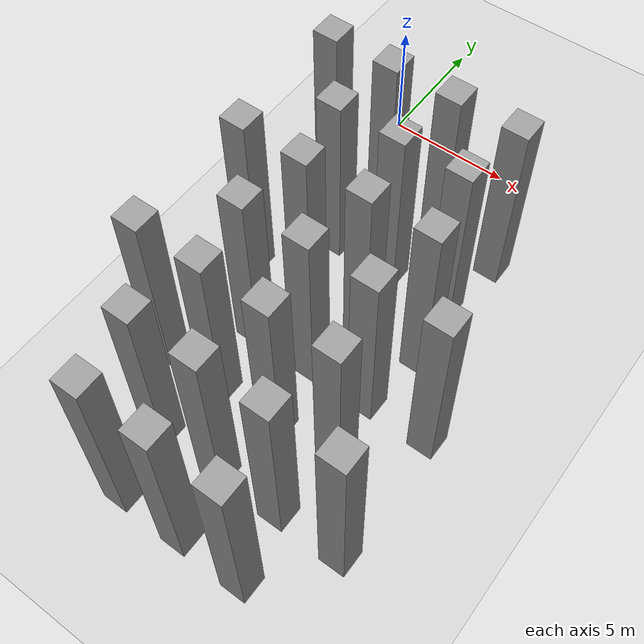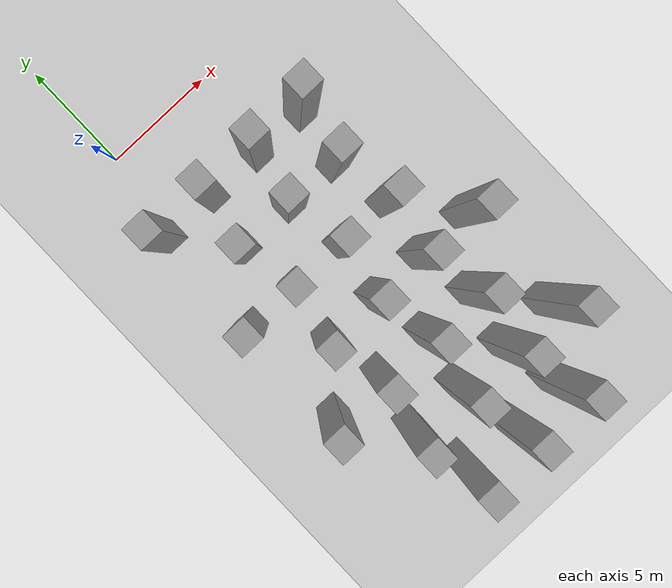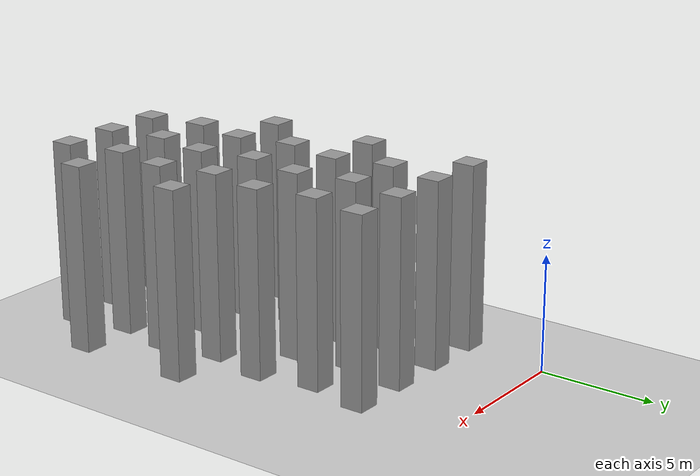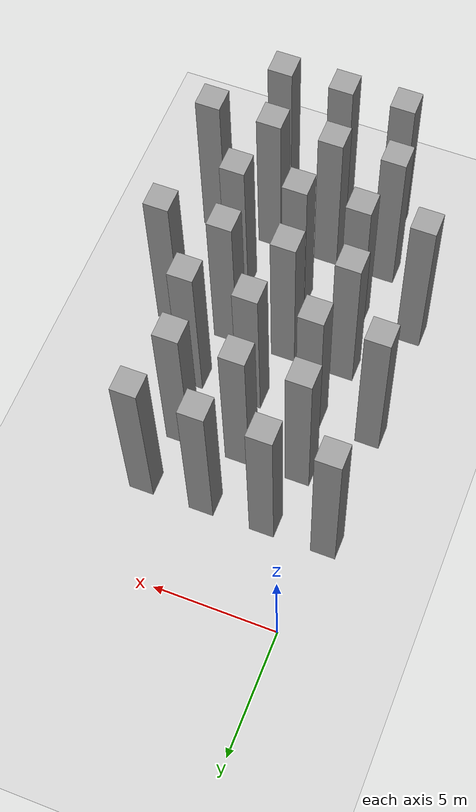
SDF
<sdf version="1.7">
 <world name="default">
  <model name="ground_plane">
   <static>1</static>
   <link name="link">
    <collision name="collision">
     <geometry><plane><normal>0 0 1</normal><size>100 100</size></plane></geometry>
     <surface>
      <contact><collide_bitmask>65535</collide_bitmask></contact>
      <friction><ode><mu>100</mu><mu2>50</mu2></ode></friction>
     </surface>
    </collision>
    <visual name="visual">
     <cast_shadows>0</cast_shadows>
     <geometry><plane><normal>0 0 1</normal><size>100 100</size></plane></geometry>
     <material>
      <script><uri>file://media/materials/scripts/gazebo.material</uri><name>Gazebo/Grey</name></script>
     </material>
    </visual>
   </link>
  </model>
  <model name="unit_box_static9">
   <link name="link">
    <inertial>
     <mass>1</mass>
     <inertia>
      <ixx>0.166667</ixx>
      <ixy>0</ixy>
      <ixz>0</ixz>
      <iyy>0.166667</iyy>
      <iyz>0</iyz>
      <izz>0.166667</izz>
     </inertia>
    </inertial>
    <visual name="visual">
     <geometry><box><size>1 1 8</size></box></geometry>
     <material>
      <script><name>Gazebo/Grey</name><uri>file://media/materials/scripts/gazebo.material</uri></script>
      <shader type="pixel"/>
     </material>
    </visual>
    <collision name="collision">
     <geometry><box><size>1 1 8</size></box></geometry>
     <surface>
      <friction>
       <ode><mu>1</mu><mu2>1</mu2><fdir1>0 0 0</fdir1><slip1>0</slip1><slip2>0</slip2></ode>
       <torsional>
        <coefficient>1</coefficient>
        <patch_radius>0</patch_radius>
        <surface_radius>0</surface_radius>
        <use_patch_radius>1</use_patch_radius>
        <ode><slip>0</slip></ode>
       </torsional>
      </friction>
      <bounce><restitution_coefficient>0</restitution_coefficient><threshold>1e+06</threshold></bounce>
      <contact>
       <collide_without_contact>0</collide_without_contact>
       <collide_without_contact_bitmask>1</collide_without_contact_bitmask>
       <collide_bitmask>1</collide_bitmask>
       <ode>
        <soft_cfm>0</soft_cfm>
        <soft_erp>0.2</soft_erp>
        <kp>1e+13</kp>
        <kd>1</kd>
        <max_vel>0.01</max_vel>
        <min_depth>0</min_depth>
       </ode>
       <bullet>
        <split_impulse>1</split_impulse>
        <split_impulse_penetration_threshold>-0.01</split_impulse_penetration_threshold>
        <soft_cfm>0</soft_cfm>
        <soft_erp>0.2</soft_erp>
        <kp>1e+13</kp>
        <kd>1</kd>
       </bullet>
      </contact>
     </surface>
    </collision>
   </link>
   <static>1</static>
   <pose>2 -19 4 0 -0 0</pose>
  </model>
  <model name="unit_box_static10">
   <link name="link">
    <inertial>
     <mass>1</mass>
     <inertia>
      <ixx>0.166667</ixx>
      <ixy>0</ixy>
      <ixz>0</ixz>
      <iyy>0.166667</iyy>
      <iyz>0</iyz>
      <izz>0.166667</izz>
     </inertia>
    </inertial>
    <visual name="visual">
     <geometry><box><size>1 1 8</size></box></geometry>
     <material>
      <script><name>Gazebo/Grey</name><uri>file://media/materials/scripts/gazebo.material</uri></script>
      <shader type="pixel"/>
     </material>
    </visual>
    <collision name="collision">
     <geometry><box><size>1 1 8</size></box></geometry>
     <surface>
      <friction>
       <ode><mu>1</mu><mu2>1</mu2><fdir1>0 0 0</fdir1><slip1>0</slip1><slip2>0</slip2></ode>
       <torsional>
        <coefficient>1</coefficient>
        <patch_radius>0</patch_radius>
        <surface_radius>0</surface_radius>
        <use_patch_radius>1</use_patch_radius>
        <ode><slip>0</slip></ode>
       </torsional>
      </friction>
      <bounce><restitution_coefficient>0</restitution_coefficient><threshold>1e+06</threshold></bounce>
      <contact>
       <collide_without_contact>0</collide_without_contact>
       <collide_without_contact_bitmask>1</collide_without_contact_bitmask>
       <collide_bitmask>1</collide_bitmask>
       <ode>
        <soft_cfm>0</soft_cfm>
        <soft_erp>0.2</soft_erp>
        <kp>1e+13</kp>
        <kd>1</kd>
        <max_vel>0.01</max_vel>
        <min_depth>0</min_depth>
       </ode>
       <bullet>
        <split_impulse>1</split_impulse>
        <split_impulse_penetration_threshold>-0.01</split_impulse_penetration_threshold>
        <soft_cfm>0</soft_cfm>
        <soft_erp>0.2</soft_erp>
        <kp>1e+13</kp>
        <kd>1</kd>
       </bullet>
      </contact>
     </surface>
    </collision>
   </link>
   <static>1</static>
   <pose>4.5 -19 4 0 -0 0</pose>
  </model>
  <model name="unit_box_static11">
   <link name="link">
    <inertial>
     <mass>1</mass>
     <inertia>
      <ixx>0.166667</ixx>
      <ixy>0</ixy>
      <ixz>0</ixz>
      <iyy>0.166667</iyy>
      <iyz>0</iyz>
      <izz>0.166667</izz>
     </inertia>
    </inertial>
    <visual name="visual">
     <geometry><box><size>1 1 8</size></box></geometry>
     <material>
      <script><name>Gazebo/Grey</name><uri>file://media/materials/scripts/gazebo.material</uri></script>
      <shader type="pixel"/>
     </material>
    </visual>
    <collision name="collision">
     <geometry><box><size>1 1 8</size></box></geometry>
     <surface>
      <friction>
       <ode><mu>1</mu><mu2>1</mu2><fdir1>0 0 0</fdir1><slip1>0</slip1><slip2>0</slip2></ode>
       <torsional>
        <coefficient>1</coefficient>
        <patch_radius>0</patch_radius>
        <surface_radius>0</surface_radius>
        <use_patch_radius>1</use_patch_radius>
        <ode><slip>0</slip></ode>
       </torsional>
      </friction>
      <bounce><restitution_coefficient>0</restitution_coefficient><threshold>1e+06</threshold></bounce>
      <contact>
       <collide_without_contact>0</collide_without_contact>
       <collide_without_contact_bitmask>1</collide_without_contact_bitmask>
       <collide_bitmask>1</collide_bitmask>
       <ode>
        <soft_cfm>0</soft_cfm>
        <soft_erp>0.2</soft_erp>
        <kp>1e+13</kp>
        <kd>1</kd>
        <max_vel>0.01</max_vel>
        <min_depth>0</min_depth>
       </ode>
       <bullet>
        <split_impulse>1</split_impulse>
        <split_impulse_penetration_threshold>-0.01</split_impulse_penetration_threshold>
        <soft_cfm>0</soft_cfm>
        <soft_erp>0.2</soft_erp>
        <kp>1e+13</kp>
        <kd>1</kd>
       </bullet>
      </contact>
     </surface>
    </collision>
   </link>
   <static>1</static>
   <pose>7 -19 4 0 -0 0</pose>
  </model>
  <model name="unit_box_static23">
   <link name="link">
    <inertial>
     <mass>1</mass>
     <inertia>
      <ixx>0.166667</ixx>
      <ixy>0</ixy>
      <ixz>0</ixz>
      <iyy>0.166667</iyy>
      <iyz>0</iyz>
      <izz>0.166667</izz>
     </inertia>
    </inertial>
    <visual name="visual">
     <geometry><box><size>1 1 8</size></box></geometry>
     <material>
      <script><name>Gazebo/Grey</name><uri>file://media/materials/scripts/gazebo.material</uri></script>
      <shader type="pixel"/>
     </material>
    </visual>
    <collision name="collision">
     <geometry><box><size>1 1 8</size></box></geometry>
     <surface>
      <friction>
       <ode><mu>1</mu><mu2>1</mu2><fdir1>0 0 0</fdir1><slip1>0</slip1><slip2>0</slip2></ode>
       <torsional>
        <coefficient>1</coefficient>
        <patch_radius>0</patch_radius>
        <surface_radius>0</surface_radius>
        <use_patch_radius>1</use_patch_radius>
        <ode><slip>0</slip></ode>
       </torsional>
      </friction>
      <bounce><restitution_coefficient>0</restitution_coefficient><threshold>1e+06</threshold></bounce>
      <contact>
       <collide_without_contact>0</collide_without_contact>
       <collide_without_contact_bitmask>1</collide_without_contact_bitmask>
       <collide_bitmask>1</collide_bitmask>
       <ode>
        <soft_cfm>0</soft_cfm>
        <soft_erp>0.2</soft_erp>
        <kp>1e+13</kp>
        <kd>1</kd>
        <max_vel>0.01</max_vel>
        <min_depth>0</min_depth>
       </ode>
       <bullet>
        <split_impulse>1</split_impulse>
        <split_impulse_penetration_threshold>-0.01</split_impulse_penetration_threshold>
        <soft_cfm>0</soft_cfm>
        <soft_erp>0.2</soft_erp>
        <kp>1e+13</kp>
        <kd>1</kd>
       </bullet>
      </contact>
     </surface>
    </collision>
   </link>
   <static>1</static>
   <pose>1.5 -16.5 4 0 -0 0</pose>
  </model>
  <model name="unit_box_static24">
   <link name="link">
    <inertial>
     <mass>1</mass>
     <inertia>
      <ixx>0.166667</ixx>
      <ixy>0</ixy>
      <ixz>0</ixz>
      <iyy>0.166667</iyy>
      <iyz>0</iyz>
      <izz>0.166667</izz>
     </inertia>
    </inertial>
    <visual name="visual">
     <geometry><box><size>1 1 8</size></box></geometry>
     <material>
      <script><name>Gazebo/Grey</name><uri>file://media/materials/scripts/gazebo.material</uri></script>
      <shader type="pixel"/>
     </material>
    </visual>
    <collision name="collision">
     <geometry><box><size>1 1 8</size></box></geometry>
     <surface>
      <friction>
       <ode><mu>1</mu><mu2>1</mu2><fdir1>0 0 0</fdir1><slip1>0</slip1><slip2>0</slip2></ode>
       <torsional>
        <coefficient>1</coefficient>
        <patch_radius>0</patch_radius>
        <surface_radius>0</surface_radius>
        <use_patch_radius>1</use_patch_radius>
        <ode><slip>0</slip></ode>
       </torsional>
      </friction>
      <bounce><restitution_coefficient>0</restitution_coefficient><threshold>1e+06</threshold></bounce>
      <contact>
       <collide_without_contact>0</collide_without_contact>
       <collide_without_contact_bitmask>1</collide_without_contact_bitmask>
       <collide_bitmask>1</collide_bitmask>
       <ode>
        <soft_cfm>0</soft_cfm>
        <soft_erp>0.2</soft_erp>
        <kp>1e+13</kp>
        <kd>1</kd>
        <max_vel>0.01</max_vel>
        <min_depth>0</min_depth>
       </ode>
       <bullet>
        <split_impulse>1</split_impulse>
        <split_impulse_penetration_threshold>-0.01</split_impulse_penetration_threshold>
        <soft_cfm>0</soft_cfm>
        <soft_erp>0.2</soft_erp>
        <kp>1e+13</kp>
        <kd>1</kd>
       </bullet>
      </contact>
     </surface>
    </collision>
   </link>
   <static>1</static>
   <pose>4 -16.5 4 0 -0 0</pose>
  </model>
  <model name="unit_box_static25">
   <link name="link">
    <inertial>
     <mass>1</mass>
     <inertia>
      <ixx>0.166667</ixx>
      <ixy>0</ixy>
      <ixz>0</ixz>
      <iyy>0.166667</iyy>
      <iyz>0</iyz>
      <izz>0.166667</izz>
     </inertia>
    </inertial>
    <visual name="visual">
     <geometry><box><size>1 1 8</size></box></geometry>
     <material>
      <script><name>Gazebo/Grey</name><uri>file://media/materials/scripts/gazebo.material</uri></script>
      <shader type="pixel"/>
     </material>
    </visual>
    <collision name="collision">
     <geometry><box><size>1 1 8</size></box></geometry>
     <surface>
      <friction>
       <ode><mu>1</mu><mu2>1</mu2><fdir1>0 0 0</fdir1><slip1>0</slip1><slip2>0</slip2></ode>
       <torsional>
        <coefficient>1</coefficient>
        <patch_radius>0</patch_radius>
        <surface_radius>0</surface_radius>
        <use_patch_radius>1</use_patch_radius>
        <ode><slip>0</slip></ode>
       </torsional>
      </friction>
      <bounce><restitution_coefficient>0</restitution_coefficient><threshold>1e+06</threshold></bounce>
      <contact>
       <collide_without_contact>0</collide_without_contact>
       <collide_without_contact_bitmask>1</collide_without_contact_bitmask>
       <collide_bitmask>1</collide_bitmask>
       <ode>
        <soft_cfm>0</soft_cfm>
        <soft_erp>0.2</soft_erp>
        <kp>1e+13</kp>
        <kd>1</kd>
        <max_vel>0.01</max_vel>
        <min_depth>0</min_depth>
       </ode>
       <bullet>
        <split_impulse>1</split_impulse>
        <split_impulse_penetration_threshold>-0.01</split_impulse_penetration_threshold>
        <soft_cfm>0</soft_cfm>
        <soft_erp>0.2</soft_erp>
        <kp>1e+13</kp>
        <kd>1</kd>
       </bullet>
      </contact>
     </surface>
    </collision>
   </link>
   <static>1</static>
   <pose>6.5 -16.5 4 0 -0 0</pose>
  </model>
  <model name="unit_box_static26">
   <link name="link">
    <inertial>
     <mass>1</mass>
     <inertia>
      <ixx>0.166667</ixx>
      <ixy>0</ixy>
      <ixz>0</ixz>
      <iyy>0.166667</iyy>
      <iyz>0</iyz>
      <izz>0.166667</izz>
     </inertia>
    </inertial>
    <visual name="visual">
     <geometry><box><size>1 1 8</size></box></geometry>
     <material>
      <script><name>Gazebo/Grey</name><uri>file://media/materials/scripts/gazebo.material</uri></script>
      <shader type="pixel"/>
     </material>
    </visual>
    <collision name="collision">
     <geometry><box><size>1 1 8</size></box></geometry>
     <surface>
      <friction>
       <ode><mu>1</mu><mu2>1</mu2><fdir1>0 0 0</fdir1><slip1>0</slip1><slip2>0</slip2></ode>
       <torsional>
        <coefficient>1</coefficient>
        <patch_radius>0</patch_radius>
        <surface_radius>0</surface_radius>
        <use_patch_radius>1</use_patch_radius>
        <ode><slip>0</slip></ode>
       </torsional>
      </friction>
      <bounce><restitution_coefficient>0</restitution_coefficient><threshold>1e+06</threshold></bounce>
      <contact>
       <collide_without_contact>0</collide_without_contact>
       <collide_without_contact_bitmask>1</collide_without_contact_bitmask>
       <collide_bitmask>1</collide_bitmask>
       <ode>
        <soft_cfm>0</soft_cfm>
        <soft_erp>0.2</soft_erp>
        <kp>1e+13</kp>
        <kd>1</kd>
        <max_vel>0.01</max_vel>
        <min_depth>0</min_depth>
       </ode>
       <bullet>
        <split_impulse>1</split_impulse>
        <split_impulse_penetration_threshold>-0.01</split_impulse_penetration_threshold>
        <soft_cfm>0</soft_cfm>
        <soft_erp>0.2</soft_erp>
        <kp>1e+13</kp>
        <kd>1</kd>
       </bullet>
      </contact>
     </surface>
    </collision>
   </link>
   <static>1</static>
   <pose>9 -16.5 4 0 -0 0</pose>
  </model>
  <model name="unit_box_static37">
   <link name="link">
    <inertial>
     <mass>1</mass>
     <inertia>
      <ixx>0.166667</ixx>
      <ixy>0</ixy>
      <ixz>0</ixz>
      <iyy>0.166667</iyy>
      <iyz>0</iyz>
      <izz>0.166667</izz>
     </inertia>
    </inertial>
    <visual name="visual">
     <geometry><box><size>1 1 8</size></box></geometry>
     <material>
      <script><name>Gazebo/Grey</name><uri>file://media/materials/scripts/gazebo.material</uri></script>
      <shader type="pixel"/>
     </material>
    </visual>
    <collision name="collision">
     <geometry><box><size>1 1 8</size></box></geometry>
     <surface>
      <friction>
       <ode><mu>1</mu><mu2>1</mu2><fdir1>0 0 0</fdir1><slip1>0</slip1><slip2>0</slip2></ode>
       <torsional>
        <coefficient>1</coefficient>
        <patch_radius>0</patch_radius>
        <surface_radius>0</surface_radius>
        <use_patch_radius>1</use_patch_radius>
        <ode><slip>0</slip></ode>
       </torsional>
      </friction>
      <bounce><restitution_coefficient>0</restitution_coefficient><threshold>1e+06</threshold></bounce>
      <contact>
       <collide_without_contact>0</collide_without_contact>
       <collide_without_contact_bitmask>1</collide_without_contact_bitmask>
       <collide_bitmask>1</collide_bitmask>
       <ode>
        <soft_cfm>0</soft_cfm>
        <soft_erp>0.2</soft_erp>
        <kp>1e+13</kp>
        <kd>1</kd>
        <max_vel>0.01</max_vel>
        <min_depth>0</min_depth>
       </ode>
       <bullet>
        <split_impulse>1</split_impulse>
        <split_impulse_penetration_threshold>-0.01</split_impulse_penetration_threshold>
        <soft_cfm>0</soft_cfm>
        <soft_erp>0.2</soft_erp>
        <kp>1e+13</kp>
        <kd>1</kd>
       </bullet>
      </contact>
     </surface>
    </collision>
   </link>
   <static>1</static>
   <pose>-0.5 -14 4 0 -0 0</pose>
  </model>
  <model name="unit_box_static38">
   <link name="link">
    <inertial>
     <mass>1</mass>
     <inertia>
      <ixx>0.166667</ixx>
      <ixy>0</ixy>
      <ixz>0</ixz>
      <iyy>0.166667</iyy>
      <iyz>0</iyz>
      <izz>0.166667</izz>
     </inertia>
    </inertial>
    <visual name="visual">
     <geometry><box><size>1 1 8</size></box></geometry>
     <material>
      <script><name>Gazebo/Grey</name><uri>file://media/materials/scripts/gazebo.material</uri></script>
      <shader type="pixel"/>
     </material>
    </visual>
    <collision name="collision">
     <geometry><box><size>1 1 8</size></box></geometry>
     <surface>
      <friction>
       <ode><mu>1</mu><mu2>1</mu2><fdir1>0 0 0</fdir1><slip1>0</slip1><slip2>0</slip2></ode>
       <torsional>
        <coefficient>1</coefficient>
        <patch_radius>0</patch_radius>
        <surface_radius>0</surface_radius>
        <use_patch_radius>1</use_patch_radius>
        <ode><slip>0</slip></ode>
       </torsional>
      </friction>
      <bounce><restitution_coefficient>0</restitution_coefficient><threshold>1e+06</threshold></bounce>
      <contact>
       <collide_without_contact>0</collide_without_contact>
       <collide_without_contact_bitmask>1</collide_without_contact_bitmask>
       <collide_bitmask>1</collide_bitmask>
       <ode>
        <soft_cfm>0</soft_cfm>
        <soft_erp>0.2</soft_erp>
        <kp>1e+13</kp>
        <kd>1</kd>
        <max_vel>0.01</max_vel>
        <min_depth>0</min_depth>
       </ode>
       <bullet>
        <split_impulse>1</split_impulse>
        <split_impulse_penetration_threshold>-0.01</split_impulse_penetration_threshold>
        <soft_cfm>0</soft_cfm>
        <soft_erp>0.2</soft_erp>
        <kp>1e+13</kp>
        <kd>1</kd>
       </bullet>
      </contact>
     </surface>
    </collision>
   </link>
   <static>1</static>
   <pose>2 -14 4 0 -0 0</pose>
  </model>
  <model name="unit_box_static39">
   <link name="link">
    <inertial>
     <mass>1</mass>
     <inertia>
      <ixx>0.166667</ixx>
      <ixy>0</ixy>
      <ixz>0</ixz>
      <iyy>0.166667</iyy>
      <iyz>0</iyz>
      <izz>0.166667</izz>
     </inertia>
    </inertial>
    <visual name="visual">
     <geometry><box><size>1 1 8</size></box></geometry>
     <material>
      <script><name>Gazebo/Grey</name><uri>file://media/materials/scripts/gazebo.material</uri></script>
      <shader type="pixel"/>
     </material>
    </visual>
    <collision name="collision">
     <geometry><box><size>1 1 8</size></box></geometry>
     <surface>
      <friction>
       <ode><mu>1</mu><mu2>1</mu2><fdir1>0 0 0</fdir1><slip1>0</slip1><slip2>0</slip2></ode>
       <torsional>
        <coefficient>1</coefficient>
        <patch_radius>0</patch_radius>
        <surface_radius>0</surface_radius>
        <use_patch_radius>1</use_patch_radius>
        <ode><slip>0</slip></ode>
       </torsional>
      </friction>
      <bounce><restitution_coefficient>0</restitution_coefficient><threshold>1e+06</threshold></bounce>
      <contact>
       <collide_without_contact>0</collide_without_contact>
       <collide_without_contact_bitmask>1</collide_without_contact_bitmask>
       <collide_bitmask>1</collide_bitmask>
       <ode>
        <soft_cfm>0</soft_cfm>
        <soft_erp>0.2</soft_erp>
        <kp>1e+13</kp>
        <kd>1</kd>
        <max_vel>0.01</max_vel>
        <min_depth>0</min_depth>
       </ode>
       <bullet>
        <split_impulse>1</split_impulse>
        <split_impulse_penetration_threshold>-0.01</split_impulse_penetration_threshold>
        <soft_cfm>0</soft_cfm>
        <soft_erp>0.2</soft_erp>
        <kp>1e+13</kp>
        <kd>1</kd>
       </bullet>
      </contact>
     </surface>
    </collision>
   </link>
   <static>1</static>
   <pose>4.5 -14 4 0 -0 0</pose>
  </model>
  <model name="unit_box_static40">
   <link name="link">
    <inertial>
     <mass>1</mass>
     <inertia>
      <ixx>0.166667</ixx>
      <ixy>0</ixy>
      <ixz>0</ixz>
      <iyy>0.166667</iyy>
      <iyz>0</iyz>
      <izz>0.166667</izz>
     </inertia>
    </inertial>
    <visual name="visual">
     <geometry><box><size>1 1 8</size></box></geometry>
     <material>
      <script><name>Gazebo/Grey</name><uri>file://media/materials/scripts/gazebo.material</uri></script>
      <shader type="pixel"/>
     </material>
    </visual>
    <collision name="collision">
     <geometry><box><size>1 1 8</size></box></geometry>
     <surface>
      <friction>
       <ode><mu>1</mu><mu2>1</mu2><fdir1>0 0 0</fdir1><slip1>0</slip1><slip2>0</slip2></ode>
       <torsional>
        <coefficient>1</coefficient>
        <patch_radius>0</patch_radius>
        <surface_radius>0</surface_radius>
        <use_patch_radius>1</use_patch_radius>
        <ode><slip>0</slip></ode>
       </torsional>
      </friction>
      <bounce><restitution_coefficient>0</restitution_coefficient><threshold>1e+06</threshold></bounce>
      <contact>
       <collide_without_contact>0</collide_without_contact>
       <collide_without_contact_bitmask>1</collide_without_contact_bitmask>
       <collide_bitmask>1</collide_bitmask>
       <ode>
        <soft_cfm>0</soft_cfm>
        <soft_erp>0.2</soft_erp>
        <kp>1e+13</kp>
        <kd>1</kd>
        <max_vel>0.01</max_vel>
        <min_depth>0</min_depth>
       </ode>
       <bullet>
        <split_impulse>1</split_impulse>
        <split_impulse_penetration_threshold>-0.01</split_impulse_penetration_threshold>
        <soft_cfm>0</soft_cfm>
        <soft_erp>0.2</soft_erp>
        <kp>1e+13</kp>
        <kd>1</kd>
       </bullet>
      </contact>
     </surface>
    </collision>
   </link>
   <static>1</static>
   <pose>7 -14 4 0 -0 0</pose>
  </model>
  <model name="unit_box_static52">
   <link name="link">
    <inertial>
     <mass>1</mass>
     <inertia>
      <ixx>0.166667</ixx>
      <ixy>0</ixy>
      <ixz>0</ixz>
      <iyy>0.166667</iyy>
      <iyz>0</iyz>
      <izz>0.166667</izz>
     </inertia>
    </inertial>
    <visual name="visual">
     <geometry><box><size>1 1 8</size></box></geometry>
     <material>
      <script><name>Gazebo/Grey</name><uri>file://media/materials/scripts/gazebo.material</uri></script>
      <shader type="pixel"/>
     </material>
    </visual>
    <collision name="collision">
     <geometry><box><size>1 1 8</size></box></geometry>
     <surface>
      <friction>
       <ode><mu>1</mu><mu2>1</mu2><fdir1>0 0 0</fdir1><slip1>0</slip1><slip2>0</slip2></ode>
       <torsional>
        <coefficient>1</coefficient>
        <patch_radius>0</patch_radius>
        <surface_radius>0</surface_radius>
        <use_patch_radius>1</use_patch_radius>
        <ode><slip>0</slip></ode>
       </torsional>
      </friction>
      <bounce><restitution_coefficient>0</restitution_coefficient><threshold>1e+06</threshold></bounce>
      <contact>
       <collide_without_contact>0</collide_without_contact>
       <collide_without_contact_bitmask>1</collide_without_contact_bitmask>
       <collide_bitmask>1</collide_bitmask>
       <ode>
        <soft_cfm>0</soft_cfm>
        <soft_erp>0.2</soft_erp>
        <kp>1e+13</kp>
        <kd>1</kd>
        <max_vel>0.01</max_vel>
        <min_depth>0</min_depth>
       </ode>
       <bullet>
        <split_impulse>1</split_impulse>
        <split_impulse_penetration_threshold>-0.01</split_impulse_penetration_threshold>
        <soft_cfm>0</soft_cfm>
        <soft_erp>0.2</soft_erp>
        <kp>1e+13</kp>
        <kd>1</kd>
       </bullet>
      </contact>
     </surface>
    </collision>
   </link>
   <static>1</static>
   <pose>1.5 -11.5 4 0 -0 0</pose>
  </model>
  <model name="unit_box_static53">
   <link name="link">
    <inertial>
     <mass>1</mass>
     <inertia>
      <ixx>0.166667</ixx>
      <ixy>0</ixy>
      <ixz>0</ixz>
      <iyy>0.166667</iyy>
      <iyz>0</iyz>
      <izz>0.166667</izz>
     </inertia>
    </inertial>
    <visual name="visual">
     <geometry><box><size>1 1 8</size></box></geometry>
     <material>
      <script><name>Gazebo/Grey</name><uri>file://media/materials/scripts/gazebo.material</uri></script>
      <shader type="pixel"/>
     </material>
    </visual>
    <collision name="collision">
     <geometry><box><size>1 1 8</size></box></geometry>
     <surface>
      <friction>
       <ode><mu>1</mu><mu2>1</mu2><fdir1>0 0 0</fdir1><slip1>0</slip1><slip2>0</slip2></ode>
       <torsional>
        <coefficient>1</coefficient>
        <patch_radius>0</patch_radius>
        <surface_radius>0</surface_radius>
        <use_patch_radius>1</use_patch_radius>
        <ode><slip>0</slip></ode>
       </torsional>
      </friction>
      <bounce><restitution_coefficient>0</restitution_coefficient><threshold>1e+06</threshold></bounce>
      <contact>
       <collide_without_contact>0</collide_without_contact>
       <collide_without_contact_bitmask>1</collide_without_contact_bitmask>
       <collide_bitmask>1</collide_bitmask>
       <ode>
        <soft_cfm>0</soft_cfm>
        <soft_erp>0.2</soft_erp>
        <kp>1e+13</kp>
        <kd>1</kd>
        <max_vel>0.01</max_vel>
        <min_depth>0</min_depth>
       </ode>
       <bullet>
        <split_impulse>1</split_impulse>
        <split_impulse_penetration_threshold>-0.01</split_impulse_penetration_threshold>
        <soft_cfm>0</soft_cfm>
        <soft_erp>0.2</soft_erp>
        <kp>1e+13</kp>
        <kd>1</kd>
       </bullet>
      </contact>
     </surface>
    </collision>
   </link>
   <static>1</static>
   <pose>4 -11.5 4 0 -0 0</pose>
  </model>
  <model name="unit_box_static54">
   <link name="link">
    <inertial>
     <mass>1</mass>
     <inertia>
      <ixx>0.166667</ixx>
      <ixy>0</ixy>
      <ixz>0</ixz>
      <iyy>0.166667</iyy>
      <iyz>0</iyz>
      <izz>0.166667</izz>
     </inertia>
    </inertial>
    <visual name="visual">
     <geometry><box><size>1 1 8</size></box></geometry>
     <material>
      <script><name>Gazebo/Grey</name><uri>file://media/materials/scripts/gazebo.material</uri></script>
      <shader type="pixel"/>
     </material>
    </visual>
    <collision name="collision">
     <geometry><box><size>1 1 8</size></box></geometry>
     <surface>
      <friction>
       <ode><mu>1</mu><mu2>1</mu2><fdir1>0 0 0</fdir1><slip1>0</slip1><slip2>0</slip2></ode>
       <torsional>
        <coefficient>1</coefficient>
        <patch_radius>0</patch_radius>
        <surface_radius>0</surface_radius>
        <use_patch_radius>1</use_patch_radius>
        <ode><slip>0</slip></ode>
       </torsional>
      </friction>
      <bounce><restitution_coefficient>0</restitution_coefficient><threshold>1e+06</threshold></bounce>
      <contact>
       <collide_without_contact>0</collide_without_contact>
       <collide_without_contact_bitmask>1</collide_without_contact_bitmask>
       <collide_bitmask>1</collide_bitmask>
       <ode>
        <soft_cfm>0</soft_cfm>
        <soft_erp>0.2</soft_erp>
        <kp>1e+13</kp>
        <kd>1</kd>
        <max_vel>0.01</max_vel>
        <min_depth>0</min_depth>
       </ode>
       <bullet>
        <split_impulse>1</split_impulse>
        <split_impulse_penetration_threshold>-0.01</split_impulse_penetration_threshold>
        <soft_cfm>0</soft_cfm>
        <soft_erp>0.2</soft_erp>
        <kp>1e+13</kp>
        <kd>1</kd>
       </bullet>
      </contact>
     </surface>
    </collision>
   </link>
   <static>1</static>
   <pose>6.5 -11.5 4 0 -0 0</pose>
  </model>
  <model name="unit_box_static55">
   <link name="link">
    <inertial>
     <mass>1</mass>
     <inertia>
      <ixx>0.166667</ixx>
      <ixy>0</ixy>
      <ixz>0</ixz>
      <iyy>0.166667</iyy>
      <iyz>0</iyz>
      <izz>0.166667</izz>
     </inertia>
    </inertial>
    <visual name="visual">
     <geometry><box><size>1 1 8</size></box></geometry>
     <material>
      <script><name>Gazebo/Grey</name><uri>file://media/materials/scripts/gazebo.material</uri></script>
      <shader type="pixel"/>
     </material>
    </visual>
    <collision name="collision">
     <geometry><box><size>1 1 8</size></box></geometry>
     <surface>
      <friction>
       <ode><mu>1</mu><mu2>1</mu2><fdir1>0 0 0</fdir1><slip1>0</slip1><slip2>0</slip2></ode>
       <torsional>
        <coefficient>1</coefficient>
        <patch_radius>0</patch_radius>
        <surface_radius>0</surface_radius>
        <use_patch_radius>1</use_patch_radius>
        <ode><slip>0</slip></ode>
       </torsional>
      </friction>
      <bounce><restitution_coefficient>0</restitution_coefficient><threshold>1e+06</threshold></bounce>
      <contact>
       <collide_without_contact>0</collide_without_contact>
       <collide_without_contact_bitmask>1</collide_without_contact_bitmask>
       <collide_bitmask>1</collide_bitmask>
       <ode>
        <soft_cfm>0</soft_cfm>
        <soft_erp>0.2</soft_erp>
        <kp>1e+13</kp>
        <kd>1</kd>
        <max_vel>0.01</max_vel>
        <min_depth>0</min_depth>
       </ode>
       <bullet>
        <split_impulse>1</split_impulse>
        <split_impulse_penetration_threshold>-0.01</split_impulse_penetration_threshold>
        <soft_cfm>0</soft_cfm>
        <soft_erp>0.2</soft_erp>
        <kp>1e+13</kp>
        <kd>1</kd>
       </bullet>
      </contact>
     </surface>
    </collision>
   </link>
   <static>1</static>
   <pose>9 -11.5 4 0 -0 0</pose>
  </model>
  <model name="unit_box_static66">
   <link name="link">
    <inertial>
     <mass>1</mass>
     <inertia>
      <ixx>0.166667</ixx>
      <ixy>0</ixy>
      <ixz>0</ixz>
      <iyy>0.166667</iyy>
      <iyz>0</iyz>
      <izz>0.166667</izz>
     </inertia>
    </inertial>
    <visual name="visual">
     <geometry><box><size>1 1 8</size></box></geometry>
     <material>
      <script><name>Gazebo/Grey</name><uri>file://media/materials/scripts/gazebo.material</uri></script>
      <shader type="pixel"/>
     </material>
    </visual>
    <collision name="collision">
     <geometry><box><size>1 1 8</size></box></geometry>
     <surface>
      <friction>
       <ode><mu>1</mu><mu2>1</mu2><fdir1>0 0 0</fdir1><slip1>0</slip1><slip2>0</slip2></ode>
       <torsional>
        <coefficient>1</coefficient>
        <patch_radius>0</patch_radius>
        <surface_radius>0</surface_radius>
        <use_patch_radius>1</use_patch_radius>
        <ode><slip>0</slip></ode>
       </torsional>
      </friction>
      <bounce><restitution_coefficient>0</restitution_coefficient><threshold>1e+06</threshold></bounce>
      <contact>
       <collide_without_contact>0</collide_without_contact>
       <collide_without_contact_bitmask>1</collide_without_contact_bitmask>
       <collide_bitmask>1</collide_bitmask>
       <ode>
        <soft_cfm>0</soft_cfm>
        <soft_erp>0.2</soft_erp>
        <kp>1e+13</kp>
        <kd>1</kd>
        <max_vel>0.01</max_vel>
        <min_depth>0</min_depth>
       </ode>
       <bullet>
        <split_impulse>1</split_impulse>
        <split_impulse_penetration_threshold>-0.01</split_impulse_penetration_threshold>
        <soft_cfm>0</soft_cfm>
        <soft_erp>0.2</soft_erp>
        <kp>1e+13</kp>
        <kd>1</kd>
       </bullet>
      </contact>
     </surface>
    </collision>
   </link>
   <static>1</static>
   <pose>-0.5 -9 4 0 -0 0</pose>
  </model>
  <model name="unit_box_static67">
   <link name="link">
    <inertial>
     <mass>1</mass>
     <inertia>
      <ixx>0.166667</ixx>
      <ixy>0</ixy>
      <ixz>0</ixz>
      <iyy>0.166667</iyy>
      <iyz>0</iyz>
      <izz>0.166667</izz>
     </inertia>
    </inertial>
    <visual name="visual">
     <geometry><box><size>1 1 8</size></box></geometry>
     <material>
      <script><name>Gazebo/Grey</name><uri>file://media/materials/scripts/gazebo.material</uri></script>
      <shader type="pixel"/>
     </material>
    </visual>
    <collision name="collision">
     <geometry><box><size>1 1 8</size></box></geometry>
     <surface>
      <friction>
       <ode><mu>1</mu><mu2>1</mu2><fdir1>0 0 0</fdir1><slip1>0</slip1><slip2>0</slip2></ode>
       <torsional>
        <coefficient>1</coefficient>
        <patch_radius>0</patch_radius>
        <surface_radius>0</surface_radius>
        <use_patch_radius>1</use_patch_radius>
        <ode><slip>0</slip></ode>
       </torsional>
      </friction>
      <bounce><restitution_coefficient>0</restitution_coefficient><threshold>1e+06</threshold></bounce>
      <contact>
       <collide_without_contact>0</collide_without_contact>
       <collide_without_contact_bitmask>1</collide_without_contact_bitmask>
       <collide_bitmask>1</collide_bitmask>
       <ode>
        <soft_cfm>0</soft_cfm>
        <soft_erp>0.2</soft_erp>
        <kp>1e+13</kp>
        <kd>1</kd>
        <max_vel>0.01</max_vel>
        <min_depth>0</min_depth>
       </ode>
       <bullet>
        <split_impulse>1</split_impulse>
        <split_impulse_penetration_threshold>-0.01</split_impulse_penetration_threshold>
        <soft_cfm>0</soft_cfm>
        <soft_erp>0.2</soft_erp>
        <kp>1e+13</kp>
        <kd>1</kd>
       </bullet>
      </contact>
     </surface>
    </collision>
   </link>
   <static>1</static>
   <pose>2 -9 4 0 -0 0</pose>
  </model>
  <model name="unit_box_static68">
   <link name="link">
    <inertial>
     <mass>1</mass>
     <inertia>
      <ixx>0.166667</ixx>
      <ixy>0</ixy>
      <ixz>0</ixz>
      <iyy>0.166667</iyy>
      <iyz>0</iyz>
      <izz>0.166667</izz>
     </inertia>
    </inertial>
    <visual name="visual">
     <geometry><box><size>1 1 8</size></box></geometry>
     <material>
      <script><name>Gazebo/Grey</name><uri>file://media/materials/scripts/gazebo.material</uri></script>
      <shader type="pixel"/>
     </material>
    </visual>
    <collision name="collision">
     <geometry><box><size>1 1 8</size></box></geometry>
     <surface>
      <friction>
       <ode><mu>1</mu><mu2>1</mu2><fdir1>0 0 0</fdir1><slip1>0</slip1><slip2>0</slip2></ode>
       <torsional>
        <coefficient>1</coefficient>
        <patch_radius>0</patch_radius>
        <surface_radius>0</surface_radius>
        <use_patch_radius>1</use_patch_radius>
        <ode><slip>0</slip></ode>
       </torsional>
      </friction>
      <bounce><restitution_coefficient>0</restitution_coefficient><threshold>1e+06</threshold></bounce>
      <contact>
       <collide_without_contact>0</collide_without_contact>
       <collide_without_contact_bitmask>1</collide_without_contact_bitmask>
       <collide_bitmask>1</collide_bitmask>
       <ode>
        <soft_cfm>0</soft_cfm>
        <soft_erp>0.2</soft_erp>
        <kp>1e+13</kp>
        <kd>1</kd>
        <max_vel>0.01</max_vel>
        <min_depth>0</min_depth>
       </ode>
       <bullet>
        <split_impulse>1</split_impulse>
        <split_impulse_penetration_threshold>-0.01</split_impulse_penetration_threshold>
        <soft_cfm>0</soft_cfm>
        <soft_erp>0.2</soft_erp>
        <kp>1e+13</kp>
        <kd>1</kd>
       </bullet>
      </contact>
     </surface>
    </collision>
   </link>
   <static>1</static>
   <pose>4.5 -9 4 0 -0 0</pose>
  </model>
  <model name="unit_box_static69">
   <link name="link">
    <inertial>
     <mass>1</mass>
     <inertia>
      <ixx>0.166667</ixx>
      <ixy>0</ixy>
      <ixz>0</ixz>
      <iyy>0.166667</iyy>
      <iyz>0</iyz>
      <izz>0.166667</izz>
     </inertia>
    </inertial>
    <visual name="visual">
     <geometry><box><size>1 1 8</size></box></geometry>
     <material>
      <script><name>Gazebo/Grey</name><uri>file://media/materials/scripts/gazebo.material</uri></script>
      <shader type="pixel"/>
     </material>
    </visual>
    <collision name="collision">
     <geometry><box><size>1 1 8</size></box></geometry>
     <surface>
      <friction>
       <ode><mu>1</mu><mu2>1</mu2><fdir1>0 0 0</fdir1><slip1>0</slip1><slip2>0</slip2></ode>
       <torsional>
        <coefficient>1</coefficient>
        <patch_radius>0</patch_radius>
        <surface_radius>0</surface_radius>
        <use_patch_radius>1</use_patch_radius>
        <ode><slip>0</slip></ode>
       </torsional>
      </friction>
      <bounce><restitution_coefficient>0</restitution_coefficient><threshold>1e+06</threshold></bounce>
      <contact>
       <collide_without_contact>0</collide_without_contact>
       <collide_without_contact_bitmask>1</collide_without_contact_bitmask>
       <collide_bitmask>1</collide_bitmask>
       <ode>
        <soft_cfm>0</soft_cfm>
        <soft_erp>0.2</soft_erp>
        <kp>1e+13</kp>
        <kd>1</kd>
        <max_vel>0.01</max_vel>
        <min_depth>0</min_depth>
       </ode>
       <bullet>
        <split_impulse>1</split_impulse>
        <split_impulse_penetration_threshold>-0.01</split_impulse_penetration_threshold>
        <soft_cfm>0</soft_cfm>
        <soft_erp>0.2</soft_erp>
        <kp>1e+13</kp>
        <kd>1</kd>
       </bullet>
      </contact>
     </surface>
    </collision>
   </link>
   <static>1</static>
   <pose>7 -9 4 0 -0 0</pose>
  </model>
  <model name="unit_box_static81">
   <link name="link">
    <inertial>
     <mass>1</mass>
     <inertia>
      <ixx>0.166667</ixx>
      <ixy>0</ixy>
      <ixz>0</ixz>
      <iyy>0.166667</iyy>
      <iyz>0</iyz>
      <izz>0.166667</izz>
     </inertia>
    </inertial>
    <visual name="visual">
     <geometry><box><size>1 1 8</size></box></geometry>
     <material>
      <script><name>Gazebo/Grey</name><uri>file://media/materials/scripts/gazebo.material</uri></script>
      <shader type="pixel"/>
     </material>
    </visual>
    <collision name="collision">
     <geometry><box><size>1 1 8</size></box></geometry>
     <surface>
      <friction>
       <ode><mu>1</mu><mu2>1</mu2><fdir1>0 0 0</fdir1><slip1>0</slip1><slip2>0</slip2></ode>
       <torsional>
        <coefficient>1</coefficient>
        <patch_radius>0</patch_radius>
        <surface_radius>0</surface_radius>
        <use_patch_radius>1</use_patch_radius>
        <ode><slip>0</slip></ode>
       </torsional>
      </friction>
      <bounce><restitution_coefficient>0</restitution_coefficient><threshold>1e+06</threshold></bounce>
      <contact>
       <collide_without_contact>0</collide_without_contact>
       <collide_without_contact_bitmask>1</collide_without_contact_bitmask>
       <collide_bitmask>1</collide_bitmask>
       <ode>
        <soft_cfm>0</soft_cfm>
        <soft_erp>0.2</soft_erp>
        <kp>1e+13</kp>
        <kd>1</kd>
        <max_vel>0.01</max_vel>
        <min_depth>0</min_depth>
       </ode>
       <bullet>
        <split_impulse>1</split_impulse>
        <split_impulse_penetration_threshold>-0.01</split_impulse_penetration_threshold>
        <soft_cfm>0</soft_cfm>
        <soft_erp>0.2</soft_erp>
        <kp>1e+13</kp>
        <kd>1</kd>
       </bullet>
      </contact>
     </surface>
    </collision>
   </link>
   <static>1</static>
   <pose>1.5 -6.5 4 0 -0 0</pose>
  </model>
  <model name="unit_box_static82">
   <link name="link">
    <inertial>
     <mass>1</mass>
     <inertia>
      <ixx>0.166667</ixx>
      <ixy>0</ixy>
      <ixz>0</ixz>
      <iyy>0.166667</iyy>
      <iyz>0</iyz>
      <izz>0.166667</izz>
     </inertia>
    </inertial>
    <visual name="visual">
     <geometry><box><size>1 1 8</size></box></geometry>
     <material>
      <script><name>Gazebo/Grey</name><uri>file://media/materials/scripts/gazebo.material</uri></script>
      <shader type="pixel"/>
     </material>
    </visual>
    <collision name="collision">
     <geometry><box><size>1 1 8</size></box></geometry>
     <surface>
      <friction>
       <ode><mu>1</mu><mu2>1</mu2><fdir1>0 0 0</fdir1><slip1>0</slip1><slip2>0</slip2></ode>
       <torsional>
        <coefficient>1</coefficient>
        <patch_radius>0</patch_radius>
        <surface_radius>0</surface_radius>
        <use_patch_radius>1</use_patch_radius>
        <ode><slip>0</slip></ode>
       </torsional>
      </friction>
      <bounce><restitution_coefficient>0</restitution_coefficient><threshold>1e+06</threshold></bounce>
      <contact>
       <collide_without_contact>0</collide_without_contact>
       <collide_without_contact_bitmask>1</collide_without_contact_bitmask>
       <collide_bitmask>1</collide_bitmask>
       <ode>
        <soft_cfm>0</soft_cfm>
        <soft_erp>0.2</soft_erp>
        <kp>1e+13</kp>
        <kd>1</kd>
        <max_vel>0.01</max_vel>
        <min_depth>0</min_depth>
       </ode>
       <bullet>
        <split_impulse>1</split_impulse>
        <split_impulse_penetration_threshold>-0.01</split_impulse_penetration_threshold>
        <soft_cfm>0</soft_cfm>
        <soft_erp>0.2</soft_erp>
        <kp>1e+13</kp>
        <kd>1</kd>
       </bullet>
      </contact>
     </surface>
    </collision>
   </link>
   <static>1</static>
   <pose>4 -6.5 4 0 -0 0</pose>
  </model>
  <model name="unit_box_static83">
   <link name="link">
    <inertial>
     <mass>1</mass>
     <inertia>
      <ixx>0.166667</ixx>
      <ixy>0</ixy>
      <ixz>0</ixz>
      <iyy>0.166667</iyy>
      <iyz>0</iyz>
      <izz>0.166667</izz>
     </inertia>
    </inertial>
    <visual name="visual">
     <geometry><box><size>1 1 8</size></box></geometry>
     <material>
      <script><name>Gazebo/Grey</name><uri>file://media/materials/scripts/gazebo.material</uri></script>
      <shader type="pixel"/>
     </material>
    </visual>
    <collision name="collision">
     <geometry><box><size>1 1 8</size></box></geometry>
     <surface>
      <friction>
       <ode><mu>1</mu><mu2>1</mu2><fdir1>0 0 0</fdir1><slip1>0</slip1><slip2>0</slip2></ode>
       <torsional>
        <coefficient>1</coefficient>
        <patch_radius>0</patch_radius>
        <surface_radius>0</surface_radius>
        <use_patch_radius>1</use_patch_radius>
        <ode><slip>0</slip></ode>
       </torsional>
      </friction>
      <bounce><restitution_coefficient>0</restitution_coefficient><threshold>1e+06</threshold></bounce>
      <contact>
       <collide_without_contact>0</collide_without_contact>
       <collide_without_contact_bitmask>1</collide_without_contact_bitmask>
       <collide_bitmask>1</collide_bitmask>
       <ode>
        <soft_cfm>0</soft_cfm>
        <soft_erp>0.2</soft_erp>
        <kp>1e+13</kp>
        <kd>1</kd>
        <max_vel>0.01</max_vel>
        <min_depth>0</min_depth>
       </ode>
       <bullet>
        <split_impulse>1</split_impulse>
        <split_impulse_penetration_threshold>-0.01</split_impulse_penetration_threshold>
        <soft_cfm>0</soft_cfm>
        <soft_erp>0.2</soft_erp>
        <kp>1e+13</kp>
        <kd>1</kd>
       </bullet>
      </contact>
     </surface>
    </collision>
   </link>
   <static>1</static>
   <pose>6.5 -6.5 4 0 -0 0</pose>
  </model>
  <model name="unit_box_static95">
   <link name="link">
    <inertial>
     <mass>1</mass>
     <inertia>
      <ixx>0.166667</ixx>
      <ixy>0</ixy>
      <ixz>0</ixz>
      <iyy>0.166667</iyy>
      <iyz>0</iyz>
      <izz>0.166667</izz>
     </inertia>
    </inertial>
    <visual name="visual">
     <geometry><box><size>1 1 8</size></box></geometry>
     <material>
      <script><name>Gazebo/Grey</name><uri>file://media/materials/scripts/gazebo.material</uri></script>
      <shader type="pixel"/>
     </material>
    </visual>
    <collision name="collision">
     <geometry><box><size>1 1 8</size></box></geometry>
     <surface>
      <friction>
       <ode><mu>1</mu><mu2>1</mu2><fdir1>0 0 0</fdir1><slip1>0</slip1><slip2>0</slip2></ode>
       <torsional>
        <coefficient>1</coefficient>
        <patch_radius>0</patch_radius>
        <surface_radius>0</surface_radius>
        <use_patch_radius>1</use_patch_radius>
        <ode><slip>0</slip></ode>
       </torsional>
      </friction>
      <bounce><restitution_coefficient>0</restitution_coefficient><threshold>1e+06</threshold></bounce>
      <contact>
       <collide_without_contact>0</collide_without_contact>
       <collide_without_contact_bitmask>1</collide_without_contact_bitmask>
       <collide_bitmask>1</collide_bitmask>
       <ode>
        <soft_cfm>0</soft_cfm>
        <soft_erp>0.2</soft_erp>
        <kp>1e+13</kp>
        <kd>1</kd>
        <max_vel>0.01</max_vel>
        <min_depth>0</min_depth>
       </ode>
       <bullet>
        <split_impulse>1</split_impulse>
        <split_impulse_penetration_threshold>-0.01</split_impulse_penetration_threshold>
        <soft_cfm>0</soft_cfm>
        <soft_erp>0.2</soft_erp>
        <kp>1e+13</kp>
        <kd>1</kd>
       </bullet>
      </contact>
     </surface>
    </collision>
   </link>
   <static>1</static>
   <pose>-0.5 -4 4 0 -0 0</pose>
  </model>
  <model name="unit_box_static96">
   <link name="link">
    <inertial>
     <mass>1</mass>
     <inertia>
      <ixx>0.166667</ixx>
      <ixy>0</ixy>
      <ixz>0</ixz>
      <iyy>0.166667</iyy>
      <iyz>0</iyz>
      <izz>0.166667</izz>
     </inertia>
    </inertial>
    <visual name="visual">
     <geometry><box><size>1 1 8</size></box></geometry>
     <material>
      <script><name>Gazebo/Grey</name><uri>file://media/materials/scripts/gazebo.material</uri></script>
      <shader type="pixel"/>
     </material>
    </visual>
    <collision name="collision">
     <geometry><box><size>1 1 8</size></box></geometry>
     <surface>
      <friction>
       <ode><mu>1</mu><mu2>1</mu2><fdir1>0 0 0</fdir1><slip1>0</slip1><slip2>0</slip2></ode>
       <torsional>
        <coefficient>1</coefficient>
        <patch_radius>0</patch_radius>
        <surface_radius>0</surface_radius>
        <use_patch_radius>1</use_patch_radius>
        <ode><slip>0</slip></ode>
       </torsional>
      </friction>
      <bounce><restitution_coefficient>0</restitution_coefficient><threshold>1e+06</threshold></bounce>
      <contact>
       <collide_without_contact>0</collide_without_contact>
       <collide_without_contact_bitmask>1</collide_without_contact_bitmask>
       <collide_bitmask>1</collide_bitmask>
       <ode>
        <soft_cfm>0</soft_cfm>
        <soft_erp>0.2</soft_erp>
        <kp>1e+13</kp>
        <kd>1</kd>
        <max_vel>0.01</max_vel>
        <min_depth>0</min_depth>
       </ode>
       <bullet>
        <split_impulse>1</split_impulse>
        <split_impulse_penetration_threshold>-0.01</split_impulse_penetration_threshold>
        <soft_cfm>0</soft_cfm>
        <soft_erp>0.2</soft_erp>
        <kp>1e+13</kp>
        <kd>1</kd>
       </bullet>
      </contact>
     </surface>
    </collision>
   </link>
   <static>1</static>
   <pose>2 -4 4 0 -0 0</pose>
  </model>
  <model name="unit_box_static97">
   <link name="link">
    <inertial>
     <mass>1</mass>
     <inertia>
      <ixx>0.166667</ixx>
      <ixy>0</ixy>
      <ixz>0</ixz>
      <iyy>0.166667</iyy>
      <iyz>0</iyz>
      <izz>0.166667</izz>
     </inertia>
    </inertial>
    <visual name="visual">
     <geometry><box><size>1 1 8</size></box></geometry>
     <material>
      <script><name>Gazebo/Grey</name><uri>file://media/materials/scripts/gazebo.material</uri></script>
      <shader type="pixel"/>
     </material>
    </visual>
    <collision name="collision">
     <geometry><box><size>1 1 8</size></box></geometry>
     <surface>
      <friction>
       <ode><mu>1</mu><mu2>1</mu2><fdir1>0 0 0</fdir1><slip1>0</slip1><slip2>0</slip2></ode>
       <torsional>
        <coefficient>1</coefficient>
        <patch_radius>0</patch_radius>
        <surface_radius>0</surface_radius>
        <use_patch_radius>1</use_patch_radius>
        <ode><slip>0</slip></ode>
       </torsional>
      </friction>
      <bounce><restitution_coefficient>0</restitution_coefficient><threshold>1e+06</threshold></bounce>
      <contact>
       <collide_without_contact>0</collide_without_contact>
       <collide_without_contact_bitmask>1</collide_without_contact_bitmask>
       <collide_bitmask>1</collide_bitmask>
       <ode>
        <soft_cfm>0</soft_cfm>
        <soft_erp>0.2</soft_erp>
        <kp>1e+13</kp>
        <kd>1</kd>
        <max_vel>0.01</max_vel>
        <min_depth>0</min_depth>
       </ode>
       <bullet>
        <split_impulse>1</split_impulse>
        <split_impulse_penetration_threshold>-0.01</split_impulse_penetration_threshold>
        <soft_cfm>0</soft_cfm>
        <soft_erp>0.2</soft_erp>
        <kp>1e+13</kp>
        <kd>1</kd>
       </bullet>
      </contact>
     </surface>
    </collision>
   </link>
   <static>1</static>
   <pose>4.5 -4 4 0 -0 0</pose>
  </model>
  <model name="unit_box_static98">
   <link name="link">
    <inertial>
     <mass>1</mass>
     <inertia>
      <ixx>0.166667</ixx>
      <ixy>0</ixy>
      <ixz>0</ixz>
      <iyy>0.166667</iyy>
      <iyz>0</iyz>
      <izz>0.166667</izz>
     </inertia>
    </inertial>
    <visual name="visual">
     <geometry><box><size>1 1 8</size></box></geometry>
     <material>
      <script><name>Gazebo/Grey</name><uri>file://media/materials/scripts/gazebo.material</uri></script>
      <shader type="pixel"/>
     </material>
    </visual>
    <collision name="collision">
     <geometry><box><size>1 1 8</size></box></geometry>
     <surface>
      <friction>
       <ode><mu>1</mu><mu2>1</mu2><fdir1>0 0 0</fdir1><slip1>0</slip1><slip2>0</slip2></ode>
       <torsional>
        <coefficient>1</coefficient>
        <patch_radius>0</patch_radius>
        <surface_radius>0</surface_radius>
        <use_patch_radius>1</use_patch_radius>
        <ode><slip>0</slip></ode>
       </torsional>
      </friction>
      <bounce><restitution_coefficient>0</restitution_coefficient><threshold>1e+06</threshold></bounce>
      <contact>
       <collide_without_contact>0</collide_without_contact>
       <collide_without_contact_bitmask>1</collide_without_contact_bitmask>
       <collide_bitmask>1</collide_bitmask>
       <ode>
        <soft_cfm>0</soft_cfm>
        <soft_erp>0.2</soft_erp>
        <kp>1e+13</kp>
        <kd>1</kd>
        <max_vel>0.01</max_vel>
        <min_depth>0</min_depth>
       </ode>
       <bullet>
        <split_impulse>1</split_impulse>
        <split_impulse_penetration_threshold>-0.01</split_impulse_penetration_threshold>
        <soft_cfm>0</soft_cfm>
        <soft_erp>0.2</soft_erp>
        <kp>1e+13</kp>
        <kd>1</kd>
       </bullet>
      </contact>
     </surface>
    </collision>
   </link>
   <static>1</static>
   <pose>7 -4 4 0 -0 0</pose>
  </model>
 </world>
</sdf>
